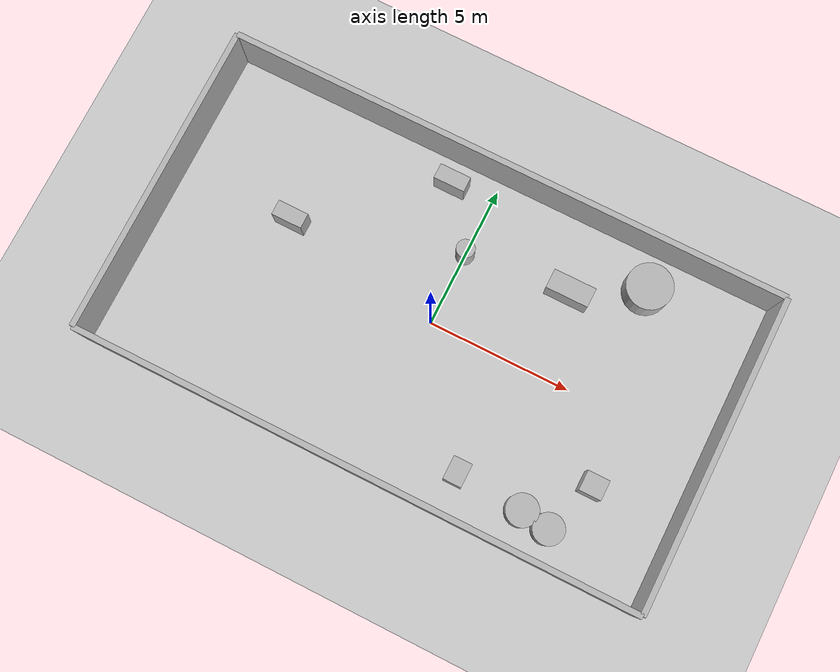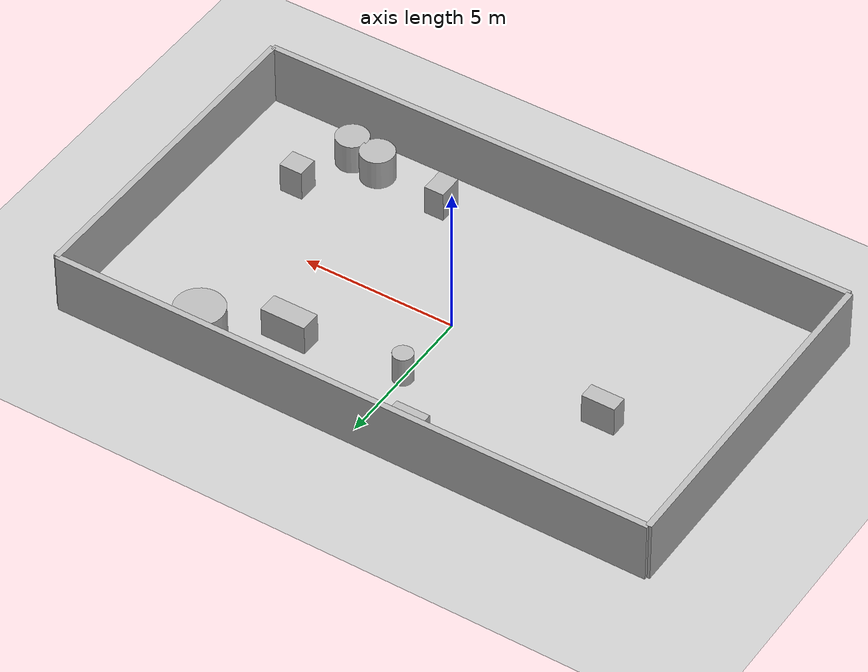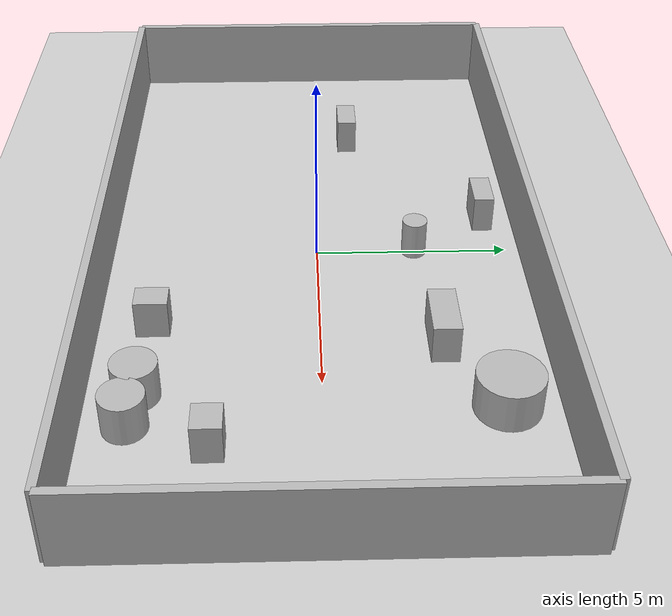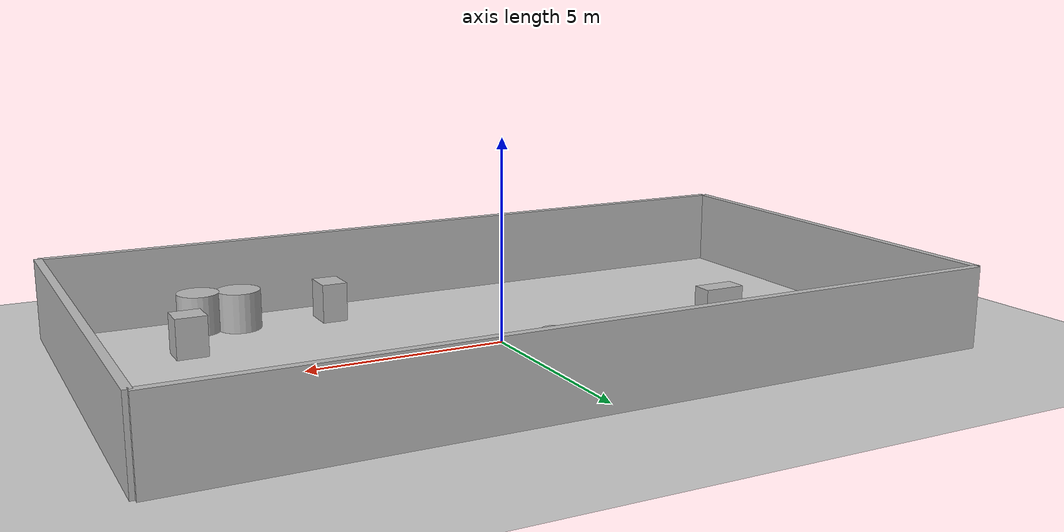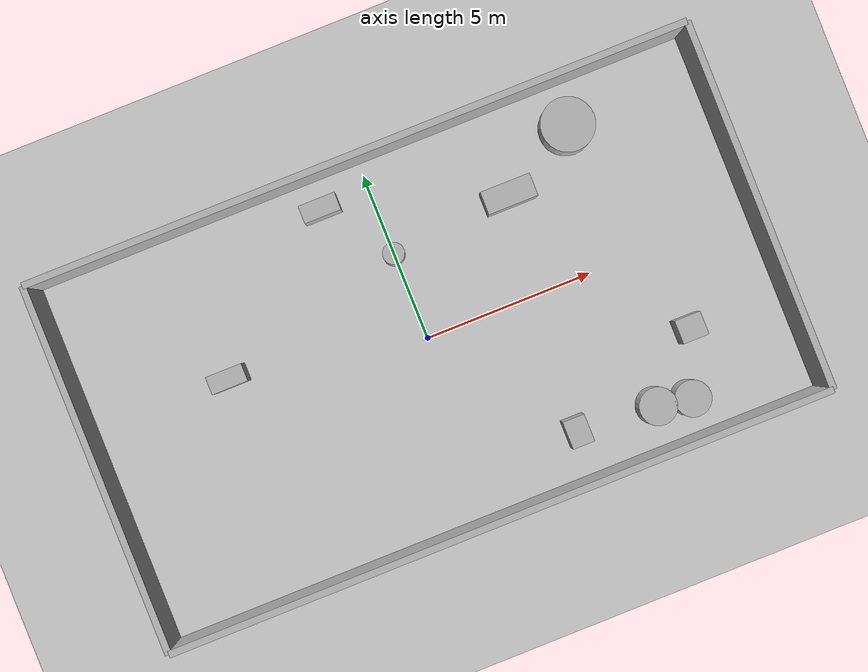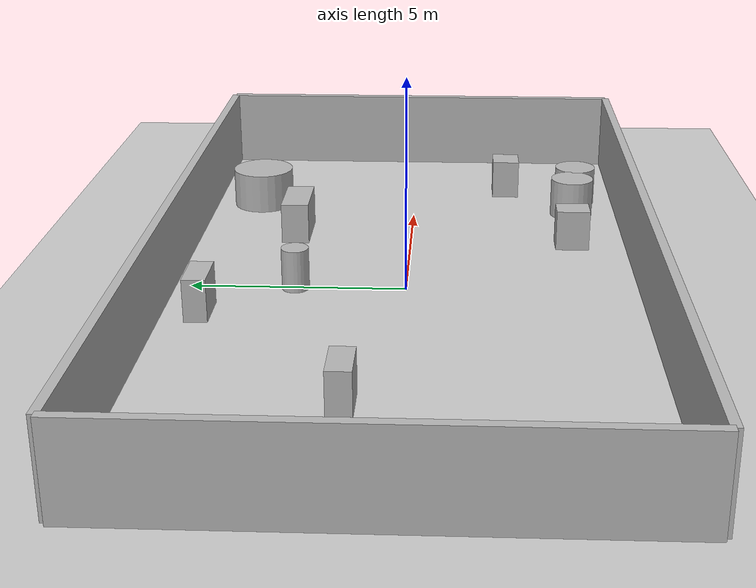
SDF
<?xml version="1.0"?>
<sdf version="1.6">
  <world name="env_58">

    <include><uri>model://ground_plane</uri></include>
    <include><uri>model://sun</uri></include>

    <!-- WALLS -->
    <model name="wall_north"><static>true</static><pose>0 5.460486870819162 1 0 0 0</pose>
      <link name="link"><collision name="collision">
        <geometry><box><size>19.715970071523664 0.2 2</size></box></geometry>
      </collision><visual name="visual">
        <geometry><box><size>19.715970071523664 0.2 2</size></box></geometry>
      </visual></link>
    </model>

    <model name="wall_south"><static>true</static><pose>0 -5.460486870819162 1 0 0 0</pose>
      <link name="link"><collision name="collision">
        <geometry><box><size>19.715970071523664 0.2 2</size></box></geometry>
      </collision><visual name="visual">
        <geometry><box><size>19.715970071523664 0.2 2</size></box></geometry>
      </visual></link>
    </model>

    <model name="wall_east"><static>true</static><pose>9.857985035761832 0 1 0 0 1.57</pose>
      <link name="link"><collision name="collision">
        <geometry><box><size>10.920973741638324 0.2 2</size></box></geometry>
      </collision><visual name="visual">
        <geometry><box><size>10.920973741638324 0.2 2</size></box></geometry>
      </visual></link>
    </model>

    <model name="wall_west"><static>true</static><pose>-9.857985035761832 0 1 0 0 1.57</pose>
      <link name="link"><collision name="collision">
        <geometry><box><size>10.920973741638324 0.2 2</size></box></geometry>
      </collision><visual name="visual">
        <geometry><box><size>10.920973741638324 0.2 2</size></box></geometry>
      </visual></link>
    </model>

    <!-- SENSOR -->

    <model name="lidar_sensor">
      <static>true</static>
      <pose>-5.959808598574609 -0.0018087673687912087 0.4 0 0 0</pose>
      <link name="link">
        <sensor name="lidar" type="ray">
          <pose>0 0 0 0 0 0</pose>
          <visualize>true</visualize>
          <always_on>true</always_on>
          <update_rate>10</update_rate>
          <ray>
            <scan><horizontal>
              <samples>720</samples>
              <resolution>1</resolution>
              <min_angle>-3.14159</min_angle>
              <max_angle>3.14159</max_angle>
            </horizontal></scan>
            <range><min>0.15</min><max>20.0</max><resolution>0.01</resolution></range>
          </ray>
          <plugin name="lidar_plugin" filename="liblidar_plugin.so"/>
        </sensor>
      </link>
    </model>

    <!-- OBSTACLES -->

    <model name="obstacle_0">
      <static>true</static>
      <pose>-0.017613771506848508 2.5633291124271382 0.5 0 0 0</pose>
      <link name="link">
        <collision name="collision">
          <geometry><cylinder><radius>0.32</radius><length>1.0</length></cylinder></geometry>
        </collision>
        <visual name="visual">
          <geometry><cylinder><radius>0.32</radius><length>1.0</length></cylinder></geometry>
        </visual>
      </link>
    </model>

    <model name="obstacle_1">
      <static>true</static>
      <pose>-1.4806188375515275 4.524814434526414 0.5 0 0 0</pose>
      <link name="link">
        <collision name="collision">
          <geometry><box><size>1.1 0.53 1.0</size></box></geometry>
        </collision>
        <visual name="visual">
          <geometry><box><size>1.1 0.53 1.0</size></box></geometry>
        </visual>
      </link>
    </model>

    <model name="obstacle_2">
      <static>true</static>
      <pose>-5.68924958468566 1.0195289582307936 0.5 0 0 0</pose>
      <link name="link">
        <collision name="collision">
          <geometry><box><size>1.08 0.53 1.0</size></box></geometry>
        </collision>
        <visual name="visual">
          <geometry><box><size>1.08 0.53 1.0</size></box></geometry>
        </visual>
      </link>
    </model>

    <model name="obstacle_3">
      <static>true</static>
      <pose>5.31142271203313 -4.189535195271685 0.5 0 0 0</pose>
      <link name="link">
        <collision name="collision">
          <geometry><cylinder><radius>0.55</radius><length>1.0</length></cylinder></geometry>
        </collision>
        <visual name="visual">
          <geometry><cylinder><radius>0.55</radius><length>1.0</length></cylinder></geometry>
        </visual>
      </link>
    </model>

    <model name="obstacle_4">
      <static>true</static>
      <pose>6.302121588739272 -4.343957884708821 0.5 0 0 0</pose>
      <link name="link">
        <collision name="collision">
          <geometry><cylinder><radius>0.53</radius><length>1.0</length></cylinder></geometry>
        </collision>
        <visual name="visual">
          <geometry><cylinder><radius>0.53</radius><length>1.0</length></cylinder></geometry>
        </visual>
      </link>
    </model>

    <model name="obstacle_5">
      <static>true</static>
      <pose>7.001629514794523 -2.4771723780808252 0.5 0 0 0</pose>
      <link name="link">
        <collision name="collision">
          <geometry><box><size>0.77 0.7 1.0</size></box></geometry>
        </collision>
        <visual name="visual">
          <geometry><box><size>0.77 0.7 1.0</size></box></geometry>
        </visual>
      </link>
    </model>

    <model name="obstacle_6">
      <static>true</static>
      <pose>2.96200523468303 -4.021377717947577 0.5 0 0 0</pose>
      <link name="link">
        <collision name="collision">
          <geometry><box><size>0.65 0.82 1.0</size></box></geometry>
        </collision>
        <visual name="visual">
          <geometry><box><size>0.65 0.82 1.0</size></box></geometry>
        </visual>
      </link>
    </model>

    <model name="obstacle_7">
      <static>true</static>
      <pose>5.882555004490284 4.1212462655633075 0.5 0 0 0</pose>
      <link name="link">
        <collision name="collision">
          <geometry><cylinder><radius>0.79</radius><length>1.0</length></cylinder></geometry>
        </collision>
        <visual name="visual">
          <geometry><cylinder><radius>0.79</radius><length>1.0</length></cylinder></geometry>
        </visual>
      </link>
    </model>

    <model name="obstacle_8">
      <static>true</static>
      <pose>3.619691372546523 2.918011634388882 0.5 0 0 0</pose>
      <link name="link">
        <collision name="collision">
          <geometry><box><size>1.49 0.68 1.0</size></box></geometry>
        </collision>
        <visual name="visual">
          <geometry><box><size>1.49 0.68 1.0</size></box></geometry>
        </visual>
      </link>
    </model>

  </world>
</sdf>
